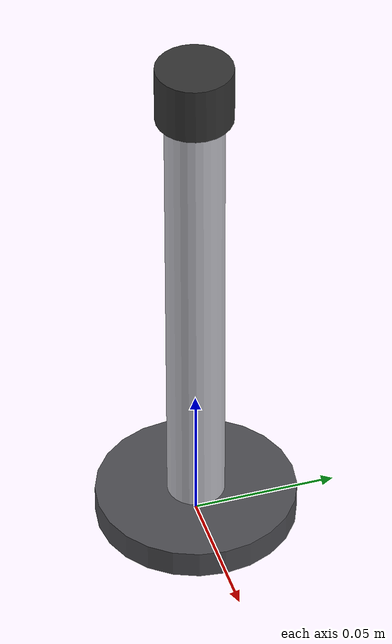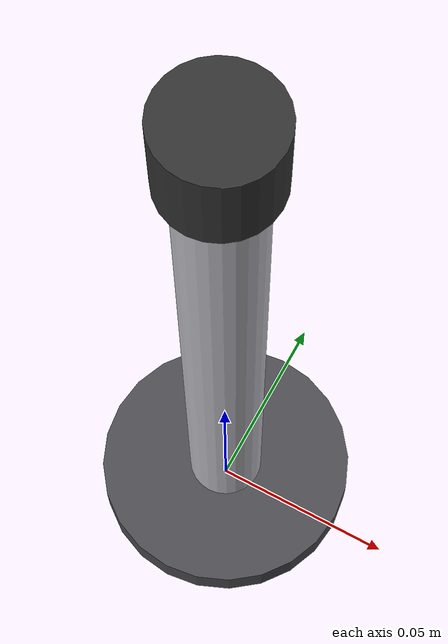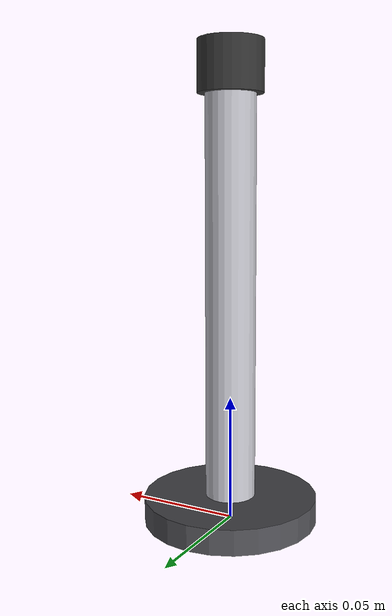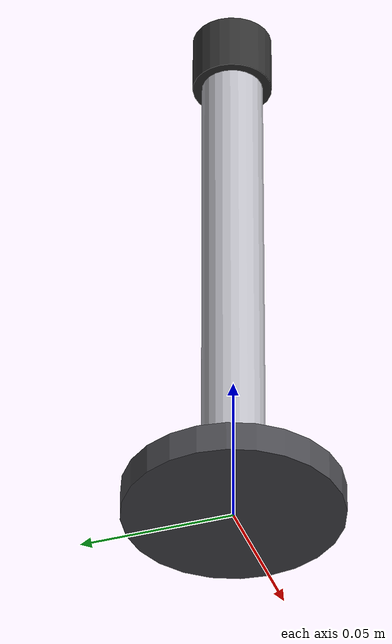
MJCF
<?xml version="1.0" encoding="utf-8"?>
<mujoco model="bunsen_burner">
  <compiler angle="radian" autolimits="true"/>
  <default>
    <default class="body"><geom contype="1" conaffinity="1"/></default>
  </default>
  <worldbody>
    <body name="base">
      <geom type="cylinder" size="0.035 0.005" pos="0 0 0.005" rgba="0.3 0.3 0.32 1" class="body"/>
      <geom type="cylinder" size="0.01 0.08" pos="0 0 0.09" rgba="0.75 0.75 0.78 1" class="body"/>
      <body name="air_collar" pos="0 0 0.18">
        <joint name="air_collar_joint" type="hinge" axis="0 0 1" range="-1.57 1.57" damping="0.2" frictionloss="0.1"/>
  <geom type="cylinder" size="0.013 0.01" pos="0 0 0" rgba="0.2 0.2 0.2 1" class="body"/>
      </body>
    </body>
  </worldbody>
</mujoco>
